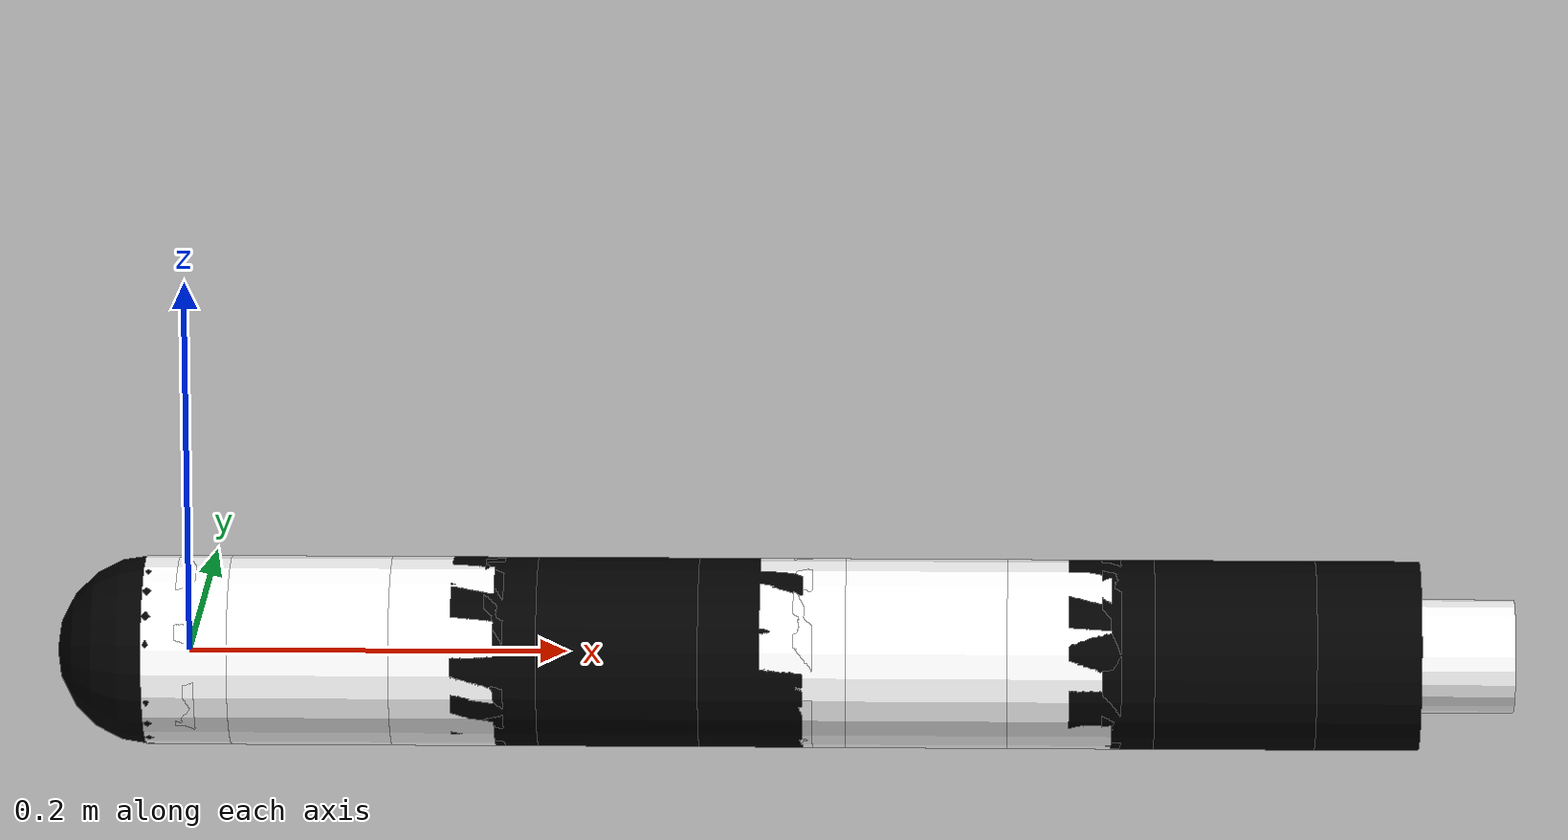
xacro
<?xml version="1.0" encoding="UTF-8"?>
<!-- Follows updated snakebot but with added inertial components-->
<!-- Updated to have normalised prismatic joint ranges - may need to update the value of origin for prismatic joints-->
<robot xmlns:xacro = "http://www.ros.org/wiki/xacro" name = "full_snakebot">
    <!-- Define colors -->
    <material name = "white">
        <color rgba = "1 1 1 1"/>
    </material>
    <material name = "black">
        <color rgba = "0 0 0 1"/>
    </material>

    <!-- Define head link -->
    <link name = "head">
        <inertial>
            <origin rpy = "0 1.5708 0" xyz = "0 0 0"/>
            <mass value = "1"/>
            <inertia ixx = "0.0001" ixy = "0" ixz = "0" iyy = "0.0001" iyz = "0" izz = "0.0001"/>
        </inertial>
        <visual>
            <origin rpy = "0 1.5708 0" xyz = "0 0 0"/>
            <geometry>
                <sphere radius = "0.05"/>
            </geometry>
            <material name = "black"/>
        </visual>
        <collision>
            <origin rpy = "0 1.5708 0" xyz = "0 0 0"/>
            <geometry>
                <sphere radius = "0.05"/>
            </geometry>
        </collision>
    </link>

    <!-- Module 0 -->
    <!-- Module 0 links-->
    <link name = "m0_base_link">
        <visual>
            <origin rpy = "0 1.5708 0" xyz = "0 0 0"/>
            <geometry>
                <cylinder radius = "0.05" length = "0.01"/>
            </geometry>
            <material name = "white"/>
        </visual>
    </link>
    <link name = "m0_bottom_bracket">
        <visual>
            <origin rpy = "0 1.5708 0" xyz = "0 0 0"/>
            <geometry>
                <cylinder radius = "0.05" length = "0.045"/>
            </geometry>
            <material name = "white"/>
        </visual>
        <collision>
            <origin rpy = "0 1.5708 0" xyz = "0 0 0"/>
            <geometry>
                <cylinder radius = "0.05" length = "0.045"/>
            </geometry>
        </collision>
        <inertial>
            <origin rpy = "0 1.5708 0" xyz = "0 0 0"/>
            <mass value = "0.1"/>
            <inertia ixx = "0.0001" ixy = "0" ixz = "0" iyy = "0.0001" iyz = "0" izz = "0.0001"/>
        </inertial>
    </link>
    <link name = "m0_virtual_link_zero"></link>
    <link name = "m0_virtual_link_one"></link>
    <link name = "m0_middle_bracket">
        <visual>
            <origin rpy = "0 1.5708 0" xyz = "0 0 0"/>
            <geometry>
                <cylinder radius = "0.05" length = "0.085"/>
            </geometry>
            <material name = "white"/>
        </visual>
        <collision>
            <origin rpy = "0 1.5708 0" xyz = "0 0 0"/>
            <geometry>
                <cylinder radius = "0.05" length = "0.07"/>
            </geometry>
        </collision>
        <inertial>
            <origin rpy = "0 1.5708 0" xyz = "0 0 0"/>
            <mass value = "0.1"/>
            <inertia ixx = "0.0001" ixy = "0" ixz = "0" iyy = "0.0001" iyz = "0" izz = "0.0001"/>
        </inertial>
    </link>
    <link name = "m0_virtual_link_two"></link>
    <link name = "m0_top_bracket">
        <visual>
            <origin rpy = "0 1.5708 0" xyz = "0 0 0"/>
            <geometry>
                <cylinder radius = "0.05" length = "0.055"/>
            </geometry>
            <material name = "white"/>
        </visual>
        <!-- Collision - only for the top half! -->
        <collision>
            <origin rpy = "0 1.5708 0" xyz = "0.025 0 0"/>
            <geometry>
                <cylinder radius = "0.05" length = "0.055"/>
            </geometry>
        </collision>
        <inertial>
            <origin rpy = "0 1.5708 0" xyz = "0 0 0"/>
            <mass value = "0.1"/>
            <inertia ixx = "0.0001" ixy = "0" ixz = "0" iyy = "0.0001" iyz = "0" izz = "0.0001"/>
        </inertial>
    </link>
    <link name = "m0_virtual_link_three"/>

    <!-- Module 0 joints -->
    <!-- Head to m0 connection -->
    <joint name = "head_to_base" type = "fixed">
        <parent link = "m0_base_link"/>
        <child link = "head"/>
        <origin xyz = "-0.02 0 0"/>
    </joint>
    <!-- Joint 0: prismatic -->
    <!-- TODO: Check axis of motion for the prismatic joints-->
    <joint name = "m0_joint_zero" type = "prismatic">
        <parent link = "m0_base_link"/>
        <child link = "m0_bottom_bracket"/>
        <axis xyz = "1 0 0"/>
        <limit lower = "-0.01" upper = "0.01" effort = "1" velocity = "0.01"/>
        <origin rpy = "0 0 0" xyz = "0 0 0"/>
        <dynamics damping = "0.0" friction = "0.01"/>
    </joint>
    <!-- Joint 1: revolute -->
    <joint name = "m0_joint_one" type = "revolute">
        <parent link = "m0_bottom_bracket"/>
        <child link = "m0_virtual_link_zero"/>
        <axis xyz = "0 0 1"/>
        <limit lower = "-0.0873" upper = "0.0873" effort = "1" velocity = "0.01"/>
    </joint>
    <!-- Joint 2: revolute -->
    <joint name = "m0_joint_two" type = "revolute">
        <parent link = "m0_virtual_link_zero"/>
        <child link = "m0_virtual_link_one"/>
        <axis xyz = "1 0 0"/>
        <limit lower = "-0.2618" upper = "0.2618" effort = "1" velocity = "0.01"/>
        <origin xyz = "0.02 0 0"/>
    </joint>
    <!-- Spring-steel to cross-joint connection -->
    <joint name = "m0_fixed_one" type = "fixed">
        <parent link = "m0_virtual_link_one"/>
        <child link = "m0_middle_bracket"/>
        <origin rpy = "0 0 0" xyz = "0.045 0 0"/>
    </joint>
    <joint name = "m0_fixed_two" type = "fixed">
        <parent link = "m0_middle_bracket"/>
        <child link = "m0_virtual_link_two"/>
        <origin rpy = "0 0 0" xyz = "0.015 0 0"/>
    </joint>
    <!-- Joint 3: revolute -->
    <joint name = "m0_joint_three" type = "revolute">
        <parent link = "m0_virtual_link_two"/>
        <child link = "m0_virtual_link_three"/>
        <axis xyz = "0 0 1"/>
        <limit lower = "-0.5236" upper = "0.5236" effort = "1" velocity = "0.01"/>
        <origin rpy = "0 0 0" xyz = "0 0 0"/>
    </joint>
    <!-- Joint 4: revolute -->
    <joint name = "m0_joint_four" type = "revolute">
        <parent link = "m0_virtual_link_three"/>
        <child link = "m0_top_bracket"/>
        <axis xyz = "0 1 0"/>
        <limit lower = "-0.5236" upper = "0.5236" effort = "1" velocity = "0.01"/>
        <origin rpy = "0 0 0" xyz = "0.055 0 0"/>
    </joint>

    <!-- Module 1 -->
    <!-- Module 1 links-->
    <link name = "m1_base_link">
        <visual>
            <origin rpy = "0 1.5708 0" xyz = "0 0 0"/>
            <geometry>
                <cylinder radius = "0.05" length = "0.01"/>
            </geometry>
            <material name = "black"/>
        </visual>
    </link>
    <link name = "m1_bottom_bracket">
        <visual>
            <origin rpy = "0 1.5708 0" xyz = "0 0 0"/>
            <geometry>
                <cylinder radius = "0.05" length = "0.045"/>
            </geometry>
            <material name = "black"/>
        </visual>
        <collision>
            <origin rpy = "0 1.5708 0" xyz = "0 0 0"/>
            <geometry>
                <cylinder radius = "0.05" length = "0.045"/>
            </geometry>
        </collision>
        <inertial>
            <origin rpy = "0 1.5708 0" xyz = "0 0 0"/>
            <mass value = "0.1"/>
            <inertia ixx = "0.0001" ixy = "0" ixz = "0" iyy = "0.0001" iyz = "0" izz = "0.0001"/>
        </inertial>
    </link>
    <link name = "m1_virtual_link_zero"></link>
    <link name = "m1_virtual_link_one"></link>
    <link name = "m1_middle_bracket">
        <visual>
            <origin rpy = "0 1.5708 0" xyz = "0 0 0"/>
            <geometry>
                <cylinder radius = "0.05" length = "0.085"/>
            </geometry>
            <material name = "black"/>
        </visual>
        <collision>
            <origin rpy = "0 1.5708 0" xyz = "0 0 0"/>
            <geometry>
                <cylinder radius = "0.05" length = "0.07"/>
            </geometry>
        </collision>
        <inertial>
            <origin rpy = "0 1.5708 0" xyz = "0 0 0"/>
            <mass value = "0.1"/>
            <inertia ixx = "0.0001" ixy = "0" ixz = "0" iyy = "0.0001" iyz = "0" izz = "0.0001"/>
        </inertial>
    </link>
    <link name = "m1_virtual_link_two"></link>
    <link name = "m1_top_bracket">
        <visual>
            <origin rpy = "0 1.5708 0" xyz = "0 0 0"/>
            <geometry>
                <cylinder radius = "0.05" length = "0.055"/>
            </geometry>
            <material name = "black"/>
        </visual>
        <!-- Collision - only for the top half! -->
        <collision>
            <origin rpy = "0 1.5708 0" xyz = "0.025 0 0"/>
            <geometry>
                <cylinder radius = "0.05" length = "0.055"/>
            </geometry>
        </collision>
        <inertial>
            <origin rpy = "0 1.5708 0" xyz = "0 0 0"/>
            <mass value = "0.1"/>
            <inertia ixx = "0.0001" ixy = "0" ixz = "0" iyy = "0.0001" iyz = "0" izz = "0.0001"/>
        </inertial>
    </link>
    <link name = "m1_virtual_link_three"/>

    <!-- Module 1 joints -->
    <!-- m0 to m1 connection-->
    <joint name = "m0_to_m1" type = "fixed">
        <parent link = "m0_top_bracket"/>
        <child link = "m1_base_link"/>
        <origin xyz = "0.0275 0 0"/>
    </joint>
    <!-- Joint 0: prismatic -->
    <joint name = "m1_joint_zero" type = "prismatic">
        <parent link = "m1_base_link"/>
        <child link = "m1_bottom_bracket"/>
        <axis xyz = "1 0 0"/>
        <limit lower = "-0.01" upper = "0.01" effort = "1" velocity = "0.01"/>
        <origin rpy = "0 0 0" xyz = "0 0 0"/>
        <dynamics damping = "0.0" friction = "0.01"/>
    </joint>
    <!-- Joint 1: revolute -->
    <joint name = "m1_joint_one" type = "revolute">
        <parent link = "m1_bottom_bracket"/>
        <child link = "m1_virtual_link_zero"/>
        <axis xyz = "0 0 1"/>
        <limit lower = "-0.0873" upper = "0.0873" effort = "1" velocity = "0.01"/>
    </joint>
    <!-- Joint 2: revolute -->
    <joint name = "m1_joint_two" type = "revolute">
        <parent link = "m1_virtual_link_zero"/>
        <child link = "m1_virtual_link_one"/>
        <axis xyz = "1 0 0"/>
        <limit lower = "-0.2618" upper = "0.2618" effort = "1" velocity = "0.01"/>
        <origin xyz = "0.02 0 0"/>
    </joint>
    <!-- Spring-steel to cross-joint connection -->
    <joint name = "m1_fixed_one" type = "fixed">
        <parent link = "m1_virtual_link_one"/>
        <child link = "m1_middle_bracket"/>
        <origin rpy = "0 0 0" xyz = "0.045 0 0"/>
    </joint>
    <joint name = "m1_fixed_two" type = "fixed">
        <parent link = "m1_middle_bracket"/>
        <child link = "m1_virtual_link_two"/>
        <origin rpy = "0 0 0" xyz = "0.015 0 0"/>
    </joint>
    <!-- Joint 3: revolute -->
    <joint name = "m1_joint_three" type = "revolute">
        <parent link = "m1_virtual_link_two"/>
        <child link = "m1_virtual_link_three"/>
        <axis xyz = "0 0 1"/>
        <limit lower = "-0.5236" upper = "0.5236" effort = "1" velocity = "0.01"/>
        <origin rpy = "0 0 0" xyz = "0 0 0"/>
    </joint>
    <!-- Joint 4: revolute -->
    <joint name = "m1_joint_four" type = "revolute">
        <parent link = "m1_virtual_link_three"/>
        <child link = "m1_top_bracket"/>
        <axis xyz = "0 1 0"/>
        <limit lower = "-0.5236" upper = "0.5236" effort = "1" velocity = "0.01"/>
        <origin rpy = "0 0 0" xyz = "0.055 0 0"/>
    </joint>

    <!-- Module 2 -->
    <!-- Module 2 links-->
    <link name = "m2_base_link">
        <visual>
            <origin rpy = "0 1.5708 0" xyz = "0 0 0"/>
            <geometry>
                <cylinder radius = "0.05" length = "0.01"/>
            </geometry>
            <material name = "white"/>
        </visual>
    </link>
    <link name = "m2_bottom_bracket">
        <visual>
            <origin rpy = "0 1.5708 0" xyz = "0 0 0"/>
            <geometry>
                <cylinder radius = "0.05" length = "0.045"/>
            </geometry>
            <material name = "white"/>
        </visual>
        <collision>
            <origin rpy = "0 1.5708 0" xyz = "0 0 0"/>
            <geometry>
                <cylinder radius = "0.05" length = "0.045"/>
            </geometry>
        </collision>
        <inertial>
            <origin rpy = "0 1.5708 0" xyz = "0 0 0"/>
            <mass value = "0.1"/>
            <inertia ixx = "0.0001" ixy = "0" ixz = "0" iyy = "0.0001" iyz = "0" izz = "0.0001"/>
        </inertial>
    </link>
    <link name = "m2_virtual_link_zero"></link>
    <link name = "m2_virtual_link_one"></link>
    <link name = "m2_middle_bracket">
        <visual>
            <origin rpy = "0 1.5708 0" xyz = "0 0 0"/>
            <geometry>
                <cylinder radius = "0.05" length = "0.085"/>
            </geometry>
            <material name = "white"/>
        </visual>
        <collision>
            <origin rpy = "0 1.5708 0" xyz = "0 0 0"/>
            <geometry>
                <cylinder radius = "0.05" length = "0.07"/>
            </geometry>
        </collision>
        <inertial>
            <origin rpy = "0 1.5708 0" xyz = "0 0 0"/>
            <mass value = "0.1"/>
            <inertia ixx = "0.0001" ixy = "0" ixz = "0" iyy = "0.0001" iyz = "0" izz = "0.0001"/>
        </inertial>
    </link>
    <link name = "m2_virtual_link_two"></link>
    <link name = "m2_top_bracket">
        <visual>
            <origin rpy = "0 1.5708 0" xyz = "0 0 0"/>
            <geometry>
                <cylinder radius = "0.05" length = "0.055"/>
            </geometry>
            <material name = "white"/>
        </visual>
        <!-- Collision - only for the top half! -->
        <collision>
            <origin rpy = "0 1.5708 0" xyz = "0.025 0 0"/>
            <geometry>
                <cylinder radius = "0.05" length = "0.055"/>
            </geometry>
        </collision>
        <inertial>
            <origin rpy = "0 1.5708 0" xyz = "0 0 0"/>
            <mass value = "0.1"/>
            <inertia ixx = "0.0001" ixy = "0" ixz = "0" iyy = "0.0001" iyz = "0" izz = "0.0001"/>
        </inertial>
    </link>
    <link name = "m2_virtual_link_three"/>

    <!-- Module 2 joints -->
    <!-- m1 to m2 connection-->
    <joint name = "m1_to_m2" type = "fixed">
        <parent link = "m1_top_bracket"/>
        <child link = "m2_base_link"/>
        <origin xyz = "0.0275 0 0"/>
    </joint>
    <!-- Joint 0: prismatic -->
    <joint name = "m2_joint_zero" type = "prismatic">
        <parent link = "m2_base_link"/>
        <child link = "m2_bottom_bracket"/>
        <axis xyz = "1 0 0"/>
        <limit lower = "-0.01" upper = "0.01" effort = "1" velocity = "0.01"/>
        <origin rpy = "0 0 0" xyz = "0 0 0"/>
        <dynamics damping = "0.0" friction = "0.01"/>
    </joint>
    <!-- Joint 1: revolute -->
    <joint name = "m2_joint_one" type = "revolute">
        <parent link = "m2_bottom_bracket"/>
        <child link = "m2_virtual_link_zero"/>
        <axis xyz = "0 0 1"/>
        <limit lower = "-0.0873" upper = "0.0873" effort = "1" velocity = "0.01"/>
    </joint>
    <!-- Joint 2: revolute -->
    <joint name = "m2_joint_two" type = "revolute">
        <parent link = "m2_virtual_link_zero"/>
        <child link = "m2_virtual_link_one"/>
        <axis xyz = "1 0 0"/>
        <limit lower = "-0.2618" upper = "0.2618" effort = "1" velocity = "0.01"/>
        <origin xyz = "0.02 0 0"/>
    </joint>
    <!-- Spring-steel to cross-joint connection -->
    <joint name = "m2_fixed_one" type = "fixed">
        <parent link = "m2_virtual_link_one"/>
        <child link = "m2_middle_bracket"/>
        <origin rpy = "0 0 0" xyz = "0.045 0 0"/>
    </joint>
    <joint name = "m2_fixed_two" type = "fixed">
        <parent link = "m2_middle_bracket"/>
        <child link = "m2_virtual_link_two"/>
        <origin rpy = "0 0 0" xyz = "0.015 0 0"/>
    </joint>
    <!-- Joint 3: revolute -->
    <joint name = "m2_joint_three" type = "revolute">
        <parent link = "m2_virtual_link_two"/>
        <child link = "m2_virtual_link_three"/>
        <axis xyz = "0 0 1"/>
        <limit lower = "-0.5236" upper = "0.5236" effort = "1" velocity = "0.01"/>
        <origin rpy = "0 0 0" xyz = "0 0 0"/>
    </joint>
    <!-- Joint 4: revolute -->
    <joint name = "m2_joint_four" type = "revolute">
        <parent link = "m2_virtual_link_three"/>
        <child link = "m2_top_bracket"/>
        <axis xyz = "0 1 0"/>
        <limit lower = "-0.5236" upper = "0.5236" effort = "1" velocity = "0.01"/>
        <origin rpy = "0 0 0" xyz = "0.055 0 0"/>
    </joint>

    <!-- Module 3 -->
    <!-- Module 3 links-->
    <link name = "m3_base_link">
        <visual>
            <origin rpy = "0 1.5708 0" xyz = "0 0 0"/>
            <geometry>
                <cylinder radius = "0.05" length = "0.01"/>
            </geometry>
            <material name = "black"/>
        </visual>
    </link>
    <link name = "m3_bottom_bracket">
        <visual>
            <origin rpy = "0 1.5708 0" xyz = "0 0 0"/>
            <geometry>
                <cylinder radius = "0.05" length = "0.045"/>
            </geometry>
            <material name = "black"/>
        </visual>
        <collision>
            <origin rpy = "0 1.5708 0" xyz = "0 0 0"/>
            <geometry>
                <cylinder radius = "0.05" length = "0.045"/>
            </geometry>
        </collision>
        <inertial>
            <origin rpy = "0 1.5708 0" xyz = "0 0 0"/>
            <mass value = "0.1"/>
            <inertia ixx = "0.0001" ixy = "0" ixz = "0" iyy = "0.0001" iyz = "0" izz = "0.0001"/>
        </inertial>
    </link>
    <link name = "m3_virtual_link_zero"></link>
    <link name = "m3_virtual_link_one"></link>
    <link name = "m3_middle_bracket">
        <visual>
            <origin rpy = "0 1.5708 0" xyz = "0 0 0"/>
            <geometry>
                <cylinder radius = "0.05" length = "0.085"/>
            </geometry>
            <material name = "black"/>
        </visual>
        <collision>
            <origin rpy = "0 1.5708 0" xyz = "0 0 0"/>
            <geometry>
                <cylinder radius = "0.05" length = "0.07"/>
            </geometry>
        </collision>
        <inertial>
            <origin rpy = "0 1.5708 0" xyz = "0 0 0"/>
            <mass value = "0.1"/>
            <inertia ixx = "0.0001" ixy = "0" ixz = "0" iyy = "0.0001" iyz = "0" izz = "0.0001"/>
        </inertial>
    </link>
    <link name = "m3_virtual_link_two"></link>
    <link name = "m3_top_bracket">
        <visual>
            <origin rpy = "0 1.5708 0" xyz = "0 0 0"/>
            <geometry>
                <cylinder radius = "0.05" length = "0.055"/>
            </geometry>
            <material name = "black"/>
        </visual>
        <!-- Collision - only for the top half! -->
        <collision>
            <origin rpy = "0 1.5708 0" xyz = "0.025 0 0"/>
            <geometry>
                <cylinder radius = "0.05" length = "0.055"/>
            </geometry>
        </collision>
        <inertial>
            <origin rpy = "0 1.5708 0" xyz = "0 0 0"/>
            <mass value = "0.1"/>
            <inertia ixx = "0.0001" ixy = "0" ixz = "0" iyy = "0.0001" iyz = "0" izz = "0.0001"/>
        </inertial>
    </link>
    <link name = "m3_virtual_link_three"/>

    <!-- Module 3 joints -->
    <!-- m2 to m3 connection-->
    <joint name = "m2_to_m3" type = "fixed">
        <parent link = "m2_top_bracket"/>
        <child link = "m3_base_link"/>
        <origin xyz = "0.0275 0 0"/>
    </joint>
    <!-- Joint 0: prismatic -->
    <joint name = "m3_joint_zero" type = "prismatic">
        <parent link = "m3_base_link"/>
        <child link = "m3_bottom_bracket"/>
        <axis xyz = "1 0 0"/>
        <limit lower = "-0.01" upper = "0.01" effort = "1" velocity = "0.01"/>
        <origin rpy = "0 0 0" xyz = "0 0 0"/>
        <dynamics damping = "0.0" friction = "0.01"/>
    </joint>
    <!-- Joint 1: revolute -->
    <joint name = "m3_joint_one" type = "revolute">
        <parent link = "m3_bottom_bracket"/>
        <child link = "m3_virtual_link_zero"/>
        <axis xyz = "0 0 1"/>
        <limit lower = "-0.0873" upper = "0.0873" effort = "1" velocity = "0.01"/>
    </joint>
    <!-- Joint 2: revolute -->
    <joint name = "m3_joint_two" type = "revolute">
        <parent link = "m3_virtual_link_zero"/>
        <child link = "m3_virtual_link_one"/>
        <axis xyz = "1 0 0"/>
        <limit lower = "-0.2618" upper = "0.2618" effort = "1" velocity = "0.01"/>
        <origin xyz = "0.02 0 0"/>
    </joint>
    <!-- Spring-steel to cross-joint connection -->
    <joint name = "m3_fixed_one" type = "fixed">
        <parent link = "m3_virtual_link_one"/>
        <child link = "m3_middle_bracket"/>
        <origin rpy = "0 0 0" xyz = "0.045 0 0"/>
    </joint>
    <joint name = "m3_fixed_two" type = "fixed">
        <parent link = "m3_middle_bracket"/>
        <child link = "m3_virtual_link_two"/>
        <origin rpy = "0 0 0" xyz = "0.015 0 0"/>
    </joint>
    <!-- Joint 3: revolute -->
    <joint name = "m3_joint_three" type = "revolute">
        <parent link = "m3_virtual_link_two"/>
        <child link = "m3_virtual_link_three"/>
        <axis xyz = "0 0 1"/>
        <limit lower = "-0.5236" upper = "0.5236" effort = "1" velocity = "0.01"/>
        <origin rpy = "0 0 0" xyz = "0 0 0"/>
    </joint>
    <!-- Joint 4: revolute -->
    <joint name = "m3_joint_four" type = "revolute">
        <parent link = "m3_virtual_link_three"/>
        <child link = "m3_top_bracket"/>
        <axis xyz = "0 1 0"/>
        <limit lower = "-0.5236" upper = "0.5236" effort = "1" velocity = "0.01"/>
        <origin rpy = "0 0 0" xyz = "0.055 0 0"/>
    </joint>

    <!-- Define tail link -->
    <link name = "tail">
        <visual>
            <origin rpy = "0 1.5708 0" xyz = "0 0 0"/>
            <geometry>
                <cylinder radius = "0.03" length = "0.1"/>
            </geometry>
            <material name = "white"/>
        </visual>
        <collision>
            <origin rpy = "0 1.5708 0" xyz = "0 0 0"/>
            <geometry>
                <cylinder radius = "0.03" length = "0.1"/>
            </geometry>
        </collision>
        <inertial>
            <origin rpy = "0 1.5708 0" xyz = "0 0 0"/>
            <mass value = "1"/>
            <inertia ixx = "0.0001" ixy = "0" ixz = "0" iyy = "0.0001" iyz = "0" izz = "0.0001"/>
        </inertial>
    </link>
    <!-- m3 to tail connection -->
    <joint name = "m3_to_tail" type = "fixed">
        <parent link = "m3_top_bracket"/>
        <child link = "tail"/>
        <origin xyz = "0.0275 0 0"/>
    </joint>
</robot>
